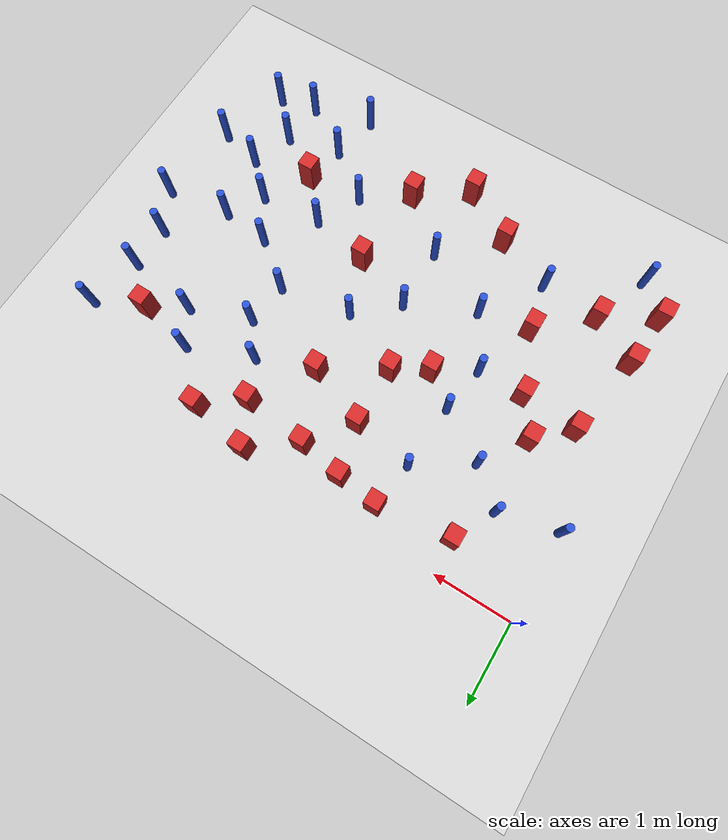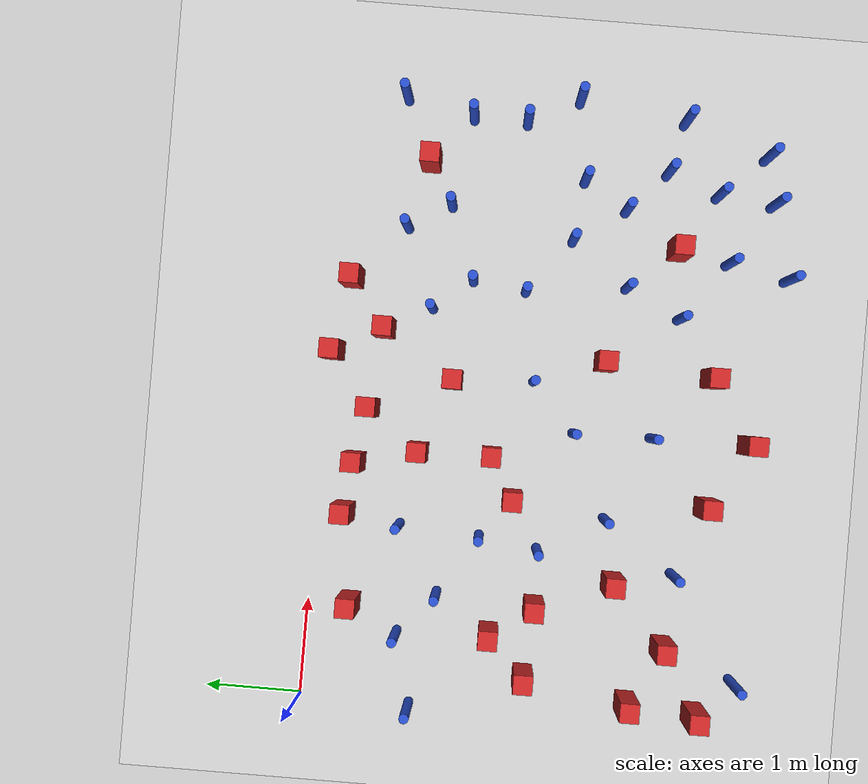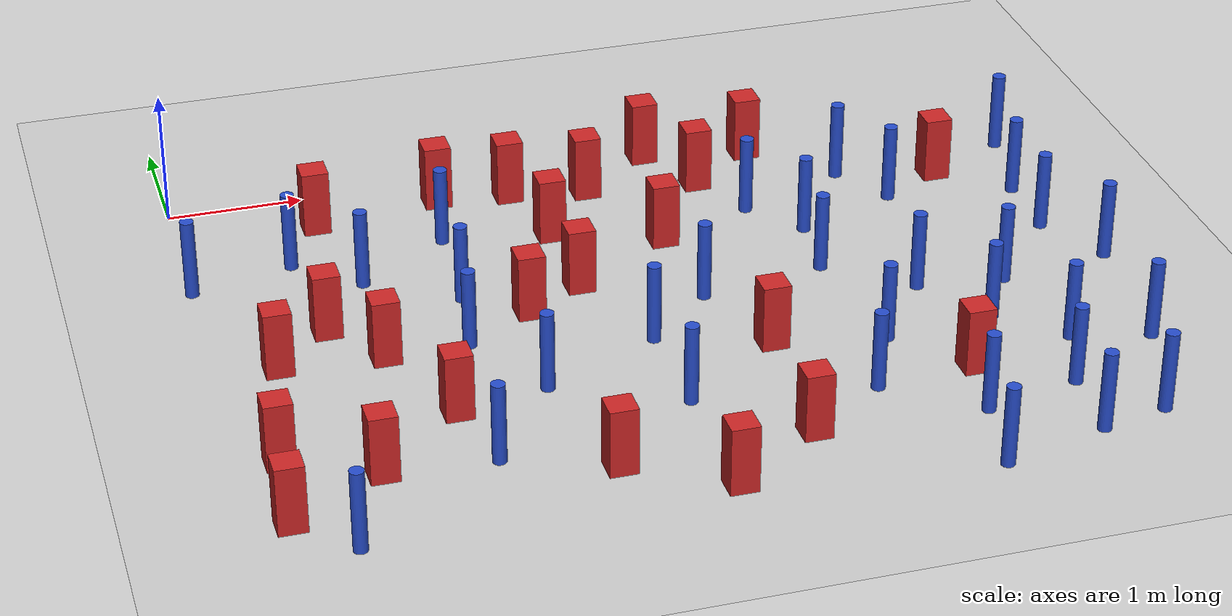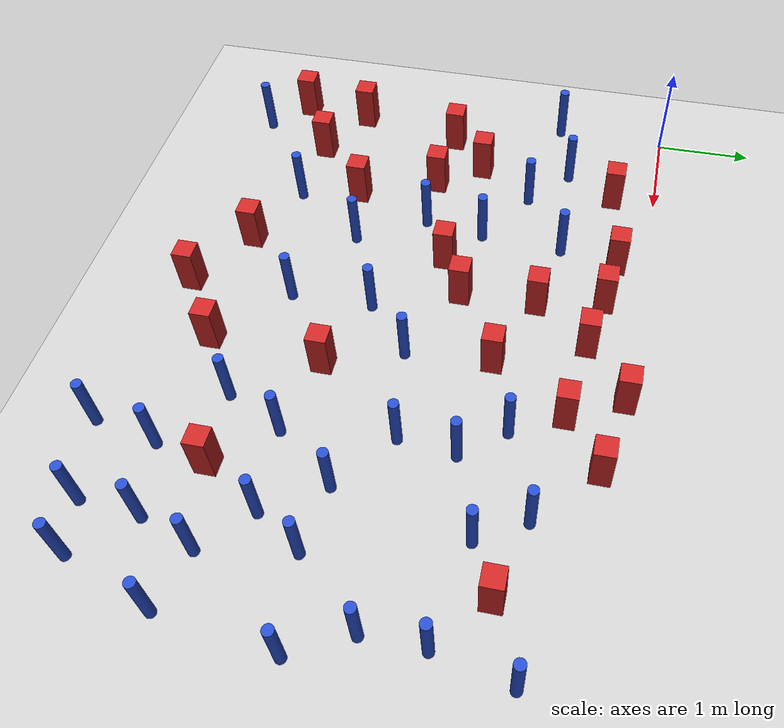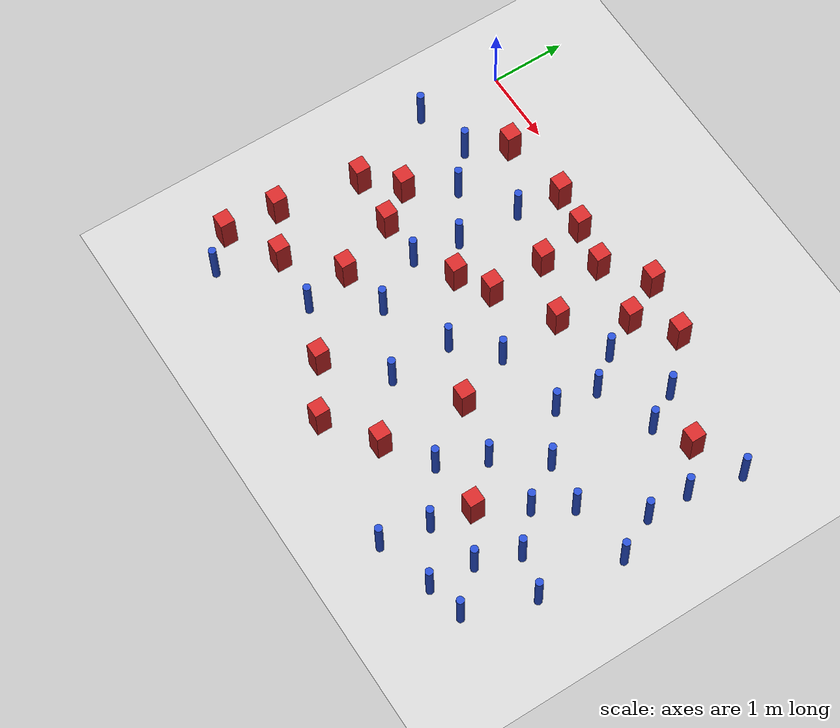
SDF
<sdf version="1.6">
 <world name="default">
  <model name="ground_plane">
   <static>1</static>
   <link name="link">
    <collision name="collision">
     <geometry><plane><normal>0 0 1</normal><size>100 100</size></plane></geometry>
     <surface><friction><ode><mu>100</mu><mu2>50</mu2></ode></friction></surface>
    </collision>
    <visual name="visual">
     <cast_shadows>0</cast_shadows>
     <geometry><plane><normal>0 0 1</normal><size>100 100</size></plane></geometry>
     <material>
      <ambient>1.0 1.0 1.0 1.0</ambient>
      <diffuse>0.8 0.8 0.8 1.0</diffuse>
      <specular>0.01 0.01 0.01 1.000000</specular>
     </material>
    </visual>
   </link>
  </model>
  <model name="pole_obstacle2">
   <static>true</static>
   <pose>4.98972135019 -2.48463313202 7.38925637345e-09 -8.47170692798e-08 1.24976764937e-08 -1.74513093023e-07</pose>
   <link name="link">
    <pose>0 0 0.3 0 -0 0</pose>
    <inertial>
     <mass>1</mass>
     <inertia><ixx>0.145833</ixx><ixy>0</ixy><ixz>0</ixz><iyy>0.145833</iyy><iyz>0</iyz><izz>0.125</izz></inertia>
    </inertial>
    <collision name="collision">
     <geometry><cylinder><radius>0.05</radius><length>.6</length></cylinder></geometry>
    </collision>
    <visual name="visual">
     <geometry><cylinder><radius>0.05</radius><length>.6</length></cylinder></geometry>
     <material>
      <script><name>Gazebo/Blue</name><uri>file://media/materials/scripts/gazebo.material</uri></script>
     </material>
    </visual>
   </link>
  </model>
  <model name="square_post_obstacle9">
   <static>true</static>
   <pose>3.07814021229 -0.493479923198 1.91545236811e-07 -7.35059704564e-06 1.12565212e-07 2.39332434364e-05</pose>
   <link name="link">
    <pose>0 0 0.25 0 -0 0</pose>
    <inertial>
     <mass>100</mass>
     <inertia>
      <ixx>0.166667</ixx>
      <ixy>0</ixy>
      <ixz>0</ixz>
      <iyy>0.166667</iyy>
      <iyz>0</iyz>
      <izz>0.166667</izz>
     </inertia>
    </inertial>
    <collision name="collision"><geometry><box><size>.2 .2 .5</size></box></geometry></collision>
    <visual name="visual">
     <geometry><box><size>.2 .2 .5</size></box></geometry>
     <material>
      <script><name>Gazebo/Red</name><uri>file://media/materials/scripts/gazebo.material</uri></script>
     </material>
    </visual>
   </link>
  </model>
  <model name="pole_obstacle8">
   <static>true</static>
   <pose>4.87359856132 -4.12664584839 7.38925637345e-09 -8.47170692796e-08 1.24976764786e-08 -1.74513093032e-07</pose>
   <link name="link">
    <pose>0 0 0.3 0 -0 0</pose>
    <inertial>
     <mass>1</mass>
     <inertia><ixx>0.145833</ixx><ixy>0</ixy><ixz>0</ixz><iyy>0.145833</iyy><iyz>0</iyz><izz>0.125</izz></inertia>
    </inertial>
    <collision name="collision">
     <geometry><cylinder><radius>0.05</radius><length>.6</length></cylinder></geometry>
    </collision>
    <visual name="visual">
     <geometry><cylinder><radius>0.05</radius><length>.6</length></cylinder></geometry>
     <material>
      <script><name>Gazebo/Blue</name><uri>file://media/materials/scripts/gazebo.material</uri></script>
     </material>
    </visual>
   </link>
  </model>
  <model name="square_post_obstacle15">
   <static>true</static>
   <pose>1.44649515637 -3.17782673812 1.91545236811e-07 -7.35059704564e-06 1.12565212e-07 2.39332434364e-05</pose>
   <link name="link">
    <pose>0 0 0.25 0 -0 0</pose>
    <inertial>
     <mass>100</mass>
     <inertia>
      <ixx>0.166667</ixx>
      <ixy>0</ixy>
      <ixz>0</ixz>
      <iyy>0.166667</iyy>
      <iyz>0</iyz>
      <izz>0.166667</izz>
     </inertia>
    </inertial>
    <collision name="collision"><geometry><box><size>.2 .2 .5</size></box></geometry></collision>
    <visual name="visual">
     <geometry><box><size>.2 .2 .5</size></box></geometry>
     <material>
      <script><name>Gazebo/Red</name><uri>file://media/materials/scripts/gazebo.material</uri></script>
     </material>
    </visual>
   </link>
  </model>
  <model name="pole_obstacle12">
   <static>true</static>
   <pose>5.34514261602 -3.01853340527 7.38925637345e-09 -8.47170692798e-08 1.24976764937e-08 -1.74513093023e-07</pose>
   <link name="link">
    <pose>0 0 0.3 0 -0 0</pose>
    <inertial>
     <mass>1</mass>
     <inertia><ixx>0.145833</ixx><ixy>0</ixy><ixz>0</ixz><iyy>0.145833</iyy><iyz>0</iyz><izz>0.125</izz></inertia>
    </inertial>
    <collision name="collision">
     <geometry><cylinder><radius>0.05</radius><length>.6</length></cylinder></geometry>
    </collision>
    <visual name="visual">
     <geometry><cylinder><radius>0.05</radius><length>.6</length></cylinder></geometry>
     <material>
      <script><name>Gazebo/Blue</name><uri>file://media/materials/scripts/gazebo.material</uri></script>
     </material>
    </visual>
   </link>
  </model>
  <model name="pole_obstacle15">
   <static>true</static>
   <pose>6.19638052908 -1.3493396878 7.38925637345e-09 -8.471706928e-08 1.24976765134e-08 -1.74513093015e-07</pose>
   <link name="link">
    <pose>0 0 0.3 0 -0 0</pose>
    <inertial>
     <mass>1</mass>
     <inertia><ixx>0.145833</ixx><ixy>0</ixy><ixz>0</ixz><iyy>0.145833</iyy><iyz>0</iyz><izz>0.125</izz></inertia>
    </inertial>
    <collision name="collision">
     <geometry><cylinder><radius>0.05</radius><length>.6</length></cylinder></geometry>
    </collision>
    <visual name="visual">
     <geometry><cylinder><radius>0.05</radius><length>.6</length></cylinder></geometry>
     <material>
      <script><name>Gazebo/Blue</name><uri>file://media/materials/scripts/gazebo.material</uri></script>
     </material>
    </visual>
   </link>
  </model>
  <model name="square_post_obstacle28">
   <static>true</static>
   <pose>2.31341641159 -4.09637459964 1.91545236811e-07 -7.35059704564e-06 1.12565212e-07 2.39332434364e-05</pose>
   <link name="link">
    <pose>0 0 0.25 0 -0 0</pose>
    <inertial>
     <mass>100</mass>
     <inertia>
      <ixx>0.166667</ixx>
      <ixy>0</ixy>
      <ixz>0</ixz>
      <iyy>0.166667</iyy>
      <iyz>0</iyz>
      <izz>0.166667</izz>
     </inertia>
    </inertial>
    <collision name="collision"><geometry><box><size>.2 .2 .5</size></box></geometry></collision>
    <visual name="visual">
     <geometry><box><size>.2 .2 .5</size></box></geometry>
     <material>
      <script><name>Gazebo/Red</name><uri>file://media/materials/scripts/gazebo.material</uri></script>
     </material>
    </visual>
   </link>
  </model>
  <model name="square_post_obstacle40">
   <static>true</static>
   <pose>3.6616009602 -4.05863573165 1.91545236811e-07 -7.35059704564e-06 1.12565212e-07 2.39332434364e-05</pose>
   <link name="link">
    <pose>0 0 0.25 0 -0 0</pose>
    <inertial>
     <mass>100</mass>
     <inertia>
      <ixx>0.166667</ixx>
      <ixy>0</ixy>
      <ixz>0</ixz>
      <iyy>0.166667</iyy>
      <iyz>0</iyz>
      <izz>0.166667</izz>
     </inertia>
    </inertial>
    <collision name="collision"><geometry><box><size>.2 .2 .5</size></box></geometry></collision>
    <visual name="visual">
     <geometry><box><size>.2 .2 .5</size></box></geometry>
     <material>
      <script><name>Gazebo/Red</name><uri>file://media/materials/scripts/gazebo.material</uri></script>
     </material>
    </visual>
   </link>
  </model>
  <model name="square_post_obstacle46">
   <static>true</static>
   <pose>3.91481133137 -0.595777153632 1.91545236811e-07 -7.35059704564e-06 1.12565212e-07 2.39332434364e-05</pose>
   <link name="link">
    <pose>0 0 0.25 0 -0 0</pose>
    <inertial>
     <mass>100</mass>
     <inertia>
      <ixx>0.166667</ixx>
      <ixy>0</ixy>
      <ixz>0</ixz>
      <iyy>0.166667</iyy>
      <iyz>0</iyz>
      <izz>0.166667</izz>
     </inertia>
    </inertial>
    <collision name="collision"><geometry><box><size>.2 .2 .5</size></box></geometry></collision>
    <visual name="visual">
     <geometry><box><size>.2 .2 .5</size></box></geometry>
     <material>
      <script><name>Gazebo/Red</name><uri>file://media/materials/scripts/gazebo.material</uri></script>
     </material>
    </visual>
   </link>
  </model>
  <model name="pole_obstacle48">
   <static>true</static>
   <pose>1.82363828428 -1.74900456657 7.38925637345e-09 -8.471706928e-08 1.24976765079e-08 -1.74513093017e-07</pose>
   <link name="link">
    <pose>0 0 0.3 0 -0 0</pose>
    <inertial>
     <mass>1</mass>
     <inertia><ixx>0.145833</ixx><ixy>0</ixy><ixz>0</ixz><iyy>0.145833</iyy><iyz>0</iyz><izz>0.125</izz></inertia>
    </inertial>
    <collision name="collision">
     <geometry><cylinder><radius>0.05</radius><length>.6</length></cylinder></geometry>
    </collision>
    <visual name="visual">
     <geometry><cylinder><radius>0.05</radius><length>.6</length></cylinder></geometry>
     <material>
      <script><name>Gazebo/Blue</name><uri>file://media/materials/scripts/gazebo.material</uri></script>
     </material>
    </visual>
   </link>
  </model>
  <model name="pole_obstacle51">
   <static>true</static>
   <pose>1.87616246916 -0.905502290944 7.38925637345e-09 -8.47170692799e-08 1.24976765075e-08 -1.74513093017e-07</pose>
   <link name="link">
    <pose>0 0 0.3 0 -0 0</pose>
    <inertial>
     <mass>1</mass>
     <inertia><ixx>0.145833</ixx><ixy>0</ixy><ixz>0</ixz><iyy>0.145833</iyy><iyz>0</iyz><izz>0.125</izz></inertia>
    </inertial>
    <collision name="collision">
     <geometry><cylinder><radius>0.05</radius><length>.6</length></cylinder></geometry>
    </collision>
    <visual name="visual">
     <geometry><cylinder><radius>0.05</radius><length>.6</length></cylinder></geometry>
     <material>
      <script><name>Gazebo/Blue</name><uri>file://media/materials/scripts/gazebo.material</uri></script>
     </material>
    </visual>
   </link>
  </model>
  <model name="pole_obstacle52">
   <static>true</static>
   <pose>4.2577325476 -3.66100865085 7.38925637345e-09 -8.47170692798e-08 1.24976764937e-08 -1.74513093023e-07</pose>
   <link name="link">
    <pose>0 0 0.3 0 -0 0</pose>
    <inertial>
     <mass>1</mass>
     <inertia><ixx>0.145833</ixx><ixy>0</ixy><ixz>0</ixz><iyy>0.145833</iyy><iyz>0</iyz><izz>0.125</izz></inertia>
    </inertial>
    <collision name="collision">
     <geometry><cylinder><radius>0.05</radius><length>.6</length></cylinder></geometry>
    </collision>
    <visual name="visual">
     <geometry><cylinder><radius>0.05</radius><length>.6</length></cylinder></geometry>
     <material>
      <script><name>Gazebo/Blue</name><uri>file://media/materials/scripts/gazebo.material</uri></script>
     </material>
    </visual>
   </link>
  </model>
  <model name="pole_obstacle53">
   <static>true</static>
   <pose>5.76941700825 -3.42225584379 7.38925637345e-09 -8.47170692798e-08 1.24976764937e-08 -1.74513093023e-07</pose>
   <link name="link">
    <pose>0 0 0.3 0 -0 0</pose>
    <inertial>
     <mass>1</mass>
     <inertia><ixx>0.145833</ixx><ixy>0</ixy><ixz>0</ixz><iyy>0.145833</iyy><iyz>0</iyz><izz>0.125</izz></inertia>
    </inertial>
    <collision name="collision">
     <geometry><cylinder><radius>0.05</radius><length>.6</length></cylinder></geometry>
    </collision>
    <visual name="visual">
     <geometry><cylinder><radius>0.05</radius><length>.6</length></cylinder></geometry>
     <material>
      <script><name>Gazebo/Blue</name><uri>file://media/materials/scripts/gazebo.material</uri></script>
     </material>
    </visual>
   </link>
  </model>
  <model name="pole_obstacle56">
   <static>true</static>
   <pose>3.48493587139 -2.1916144072 7.38925637345e-09 -8.47170692798e-08 1.24976764939e-08 -1.74513093025e-07</pose>
   <link name="link">
    <pose>0 0 0.3 0 -0 0</pose>
    <inertial>
     <mass>1</mass>
     <inertia><ixx>0.145833</ixx><ixy>0</ixy><ixz>0</ixz><iyy>0.145833</iyy><iyz>0</iyz><izz>0.125</izz></inertia>
    </inertial>
    <collision name="collision">
     <geometry><cylinder><radius>0.05</radius><length>.6</length></cylinder></geometry>
    </collision>
    <visual name="visual">
     <geometry><cylinder><radius>0.05</radius><length>.6</length></cylinder></geometry>
     <material>
      <script><name>Gazebo/Blue</name><uri>file://media/materials/scripts/gazebo.material</uri></script>
     </material>
    </visual>
   </link>
  </model>
  <model name="pole_obstacle61">
   <static>true</static>
   <pose>4.99258615142 -0.750755131839 7.38925637345e-09 -8.47170692799e-08 1.24976765038e-08 -1.74513093018e-07</pose>
   <link name="link">
    <pose>0 0 0.3 0 -0 0</pose>
    <inertial>
     <mass>1</mass>
     <inertia><ixx>0.145833</ixx><ixy>0</ixy><ixz>0</ixz><iyy>0.145833</iyy><iyz>0</iyz><izz>0.125</izz></inertia>
    </inertial>
    <collision name="collision">
     <geometry><cylinder><radius>0.05</radius><length>.6</length></cylinder></geometry>
    </collision>
    <visual name="visual">
     <geometry><cylinder><radius>0.05</radius><length>.6</length></cylinder></geometry>
     <material>
      <script><name>Gazebo/Blue</name><uri>file://media/materials/scripts/gazebo.material</uri></script>
     </material>
    </visual>
   </link>
  </model>
  <model name="pole_obstacle74">
   <static>true</static>
   <pose>4.16450571436 -1.07371164675 7.38925637345e-09 -8.471706928e-08 1.24976765134e-08 -1.74513093015e-07</pose>
   <link name="link">
    <pose>0 0 0.3 0 -0 0</pose>
    <inertial>
     <mass>1</mass>
     <inertia><ixx>0.145833</ixx><ixy>0</ixy><ixz>0</ixz><iyy>0.145833</iyy><iyz>0</iyz><izz>0.125</izz></inertia>
    </inertial>
    <collision name="collision">
     <geometry><cylinder><radius>0.05</radius><length>.6</length></cylinder></geometry>
    </collision>
    <visual name="visual">
     <geometry><cylinder><radius>0.05</radius><length>.6</length></cylinder></geometry>
     <material>
      <script><name>Gazebo/Blue</name><uri>file://media/materials/scripts/gazebo.material</uri></script>
     </material>
    </visual>
   </link>
  </model>
  <model name="pole_obstacle85">
   <static>true</static>
   <pose>5.57365459391 -3.96516409091 7.38925637345e-09 -8.47170692799e-08 1.24976764984e-08 -1.7451309302e-07</pose>
   <link name="link">
    <pose>0 0 0.3 0 -0 0</pose>
    <inertial>
     <mass>1</mass>
     <inertia><ixx>0.145833</ixx><ixy>0</ixy><ixz>0</ixz><iyy>0.145833</iyy><iyz>0</iyz><izz>0.125</izz></inertia>
    </inertial>
    <collision name="collision">
     <geometry><cylinder><radius>0.05</radius><length>.6</length></cylinder></geometry>
    </collision>
    <visual name="visual">
     <geometry><cylinder><radius>0.05</radius><length>.6</length></cylinder></geometry>
     <material>
      <script><name>Gazebo/Blue</name><uri>file://media/materials/scripts/gazebo.material</uri></script>
     </material>
    </visual>
   </link>
  </model>
  <model name="square_post_obstacle80">
   <static>true</static>
   <pose>3.43149985435 -1.34768225889 1.91545236811e-07 -7.35059704564e-06 1.12565212e-07 2.39332434364e-05</pose>
   <link name="link">
    <pose>0 0 0.25 0 -0 0</pose>
    <inertial>
     <mass>100</mass>
     <inertia>
      <ixx>0.166667</ixx>
      <ixy>0</ixy>
      <ixz>0</ixz>
      <iyy>0.166667</iyy>
      <iyz>0</iyz>
      <izz>0.166667</izz>
     </inertia>
    </inertial>
    <collision name="collision"><geometry><box><size>.2 .2 .5</size></box></geometry></collision>
    <visual name="visual">
     <geometry><box><size>.2 .2 .5</size></box></geometry>
     <material>
      <script><name>Gazebo/Red</name><uri>file://media/materials/scripts/gazebo.material</uri></script>
     </material>
    </visual>
   </link>
  </model>
  <model name="pole_obstacle88">
   <static>true</static>
   <pose>4.41776695109 -2.03692035002 7.38925637345e-09 -8.471706928e-08 1.2497676506e-08 -1.74513093017e-07</pose>
   <link name="link">
    <pose>0 0 0.3 0 -0 0</pose>
    <inertial>
     <mass>1</mass>
     <inertia><ixx>0.145833</ixx><ixy>0</ixy><ixz>0</ixz><iyy>0.145833</iyy><iyz>0</iyz><izz>0.125</izz></inertia>
    </inertial>
    <collision name="collision">
     <geometry><cylinder><radius>0.05</radius><length>.6</length></cylinder></geometry>
    </collision>
    <visual name="visual">
     <geometry><cylinder><radius>0.05</radius><length>.6</length></cylinder></geometry>
     <material>
      <script><name>Gazebo/Blue</name><uri>file://media/materials/scripts/gazebo.material</uri></script>
     </material>
    </visual>
   </link>
  </model>
  <model name="square_post_obstacle86">
   <static>true</static>
   <pose>2.50342741893 -0.389893578889 1.91545236811e-07 -7.35059704564e-06 1.12565212e-07 2.39332434364e-05</pose>
   <link name="link">
    <pose>0 0 0.25 0 -0 0</pose>
    <inertial>
     <mass>100</mass>
     <inertia>
      <ixx>0.166667</ixx>
      <ixy>0</ixy>
      <ixz>0</ixz>
      <iyy>0.166667</iyy>
      <iyz>0</iyz>
      <izz>0.166667</izz>
     </inertia>
    </inertial>
    <collision name="collision"><geometry><box><size>.2 .2 .5</size></box></geometry></collision>
    <visual name="visual">
     <geometry><box><size>.2 .2 .5</size></box></geometry>
     <material>
      <script><name>Gazebo/Red</name><uri>file://media/materials/scripts/gazebo.material</uri></script>
     </material>
    </visual>
   </link>
  </model>
  <model name="pole_obstacle107">
   <static>true</static>
   <pose>1.5799974567 -3.80295663081 7.38925637345e-09 -8.47170692799e-08 1.24976765053e-08 -1.74513093017e-07</pose>
   <link name="link">
    <pose>0 0 0.3 0 -0 0</pose>
    <inertial>
     <mass>1</mass>
     <inertia><ixx>0.145833</ixx><ixy>0</ixy><ixz>0</ixz><iyy>0.145833</iyy><iyz>0</iyz><izz>0.125</izz></inertia>
    </inertial>
    <collision name="collision">
     <geometry><cylinder><radius>0.05</radius><length>.6</length></cylinder></geometry>
    </collision>
    <visual name="visual">
     <geometry><cylinder><radius>0.05</radius><length>.6</length></cylinder></geometry>
     <material>
      <script><name>Gazebo/Blue</name><uri>file://media/materials/scripts/gazebo.material</uri></script>
     </material>
    </visual>
   </link>
  </model>
  <model name="pole_obstacle113">
   <static>true</static>
   <pose>5.5223241672 -4.55224135968 7.38925637345e-09 -8.47170692796e-08 1.24976764786e-08 -1.74513093032e-07</pose>
   <link name="link">
    <pose>0 0 0.3 0 -0 0</pose>
    <inertial>
     <mass>1</mass>
     <inertia><ixx>0.145833</ixx><ixy>0</ixy><ixz>0</ixz><iyy>0.145833</iyy><iyz>0</iyz><izz>0.125</izz></inertia>
    </inertial>
    <collision name="collision">
     <geometry><cylinder><radius>0.05</radius><length>.6</length></cylinder></geometry>
    </collision>
    <visual name="visual">
     <geometry><cylinder><radius>0.05</radius><length>.6</length></cylinder></geometry>
     <material>
      <script><name>Gazebo/Blue</name><uri>file://media/materials/scripts/gazebo.material</uri></script>
     </material>
    </visual>
   </link>
  </model>
  <model name="pole_obstacle114">
   <static>true</static>
   <pose>5.25472346224 -1.19340477333 7.38925637345e-09 -8.471706928e-08 1.24976765134e-08 -1.74513093015e-07</pose>
   <link name="link">
    <pose>0 0 0.3 0 -0 0</pose>
    <inertial>
     <mass>1</mass>
     <inertia><ixx>0.145833</ixx><ixy>0</ixy><ixz>0</ixz><iyy>0.145833</iyy><iyz>0</iyz><izz>0.125</izz></inertia>
    </inertial>
    <collision name="collision">
     <geometry><cylinder><radius>0.05</radius><length>.6</length></cylinder></geometry>
    </collision>
    <visual name="visual">
     <geometry><cylinder><radius>0.05</radius><length>.6</length></cylinder></geometry>
     <material>
      <script><name>Gazebo/Blue</name><uri>file://media/materials/scripts/gazebo.material</uri></script>
     </material>
    </visual>
   </link>
  </model>
  <model name="square_post_obstacle106">
   <static>true</static>
   <pose>5.70944358557 -0.939359294038 1.91545236811e-07 -7.35059704564e-06 1.12565212e-07 2.39332434364e-05</pose>
   <link name="link">
    <pose>0 0 0.25 0 -0 0</pose>
    <inertial>
     <mass>100</mass>
     <inertia>
      <ixx>0.166667</ixx>
      <ixy>0</ixy>
      <ixz>0</ixz>
      <iyy>0.166667</iyy>
      <iyz>0</iyz>
      <izz>0.166667</izz>
     </inertia>
    </inertial>
    <collision name="collision"><geometry><box><size>.2 .2 .5</size></box></geometry></collision>
    <visual name="visual">
     <geometry><box><size>.2 .2 .5</size></box></geometry>
     <material>
      <script><name>Gazebo/Red</name><uri>file://media/materials/scripts/gazebo.material</uri></script>
     </material>
    </visual>
   </link>
  </model>
  <model name="square_post_obstacle107">
   <static>true</static>
   <pose>2.66814691827 -1.81201320713 1.91545236811e-07 -7.35059704564e-06 1.12565212e-07 2.39332434364e-05</pose>
   <link name="link">
    <pose>0 0 0.25 0 -0 0</pose>
    <inertial>
     <mass>100</mass>
     <inertia>
      <ixx>0.166667</ixx>
      <ixy>0</ixy>
      <ixz>0</ixz>
      <iyy>0.166667</iyy>
      <iyz>0</iyz>
      <izz>0.166667</izz>
     </inertia>
    </inertial>
    <collision name="collision"><geometry><box><size>.2 .2 .5</size></box></geometry></collision>
    <visual name="visual">
     <geometry><box><size>.2 .2 .5</size></box></geometry>
     <material>
      <script><name>Gazebo/Red</name><uri>file://media/materials/scripts/gazebo.material</uri></script>
     </material>
    </visual>
   </link>
  </model>
  <model name="pole_obstacle126">
   <static>true</static>
   <pose>4.4852120022 -1.47841758249 7.38925637345e-09 -8.471706928e-08 1.24976765134e-08 -1.74513093015e-07</pose>
   <link name="link">
    <pose>0 0 0.3 0 -0 0</pose>
    <inertial>
     <mass>1</mass>
     <inertia><ixx>0.145833</ixx><ixy>0</ixy><ixz>0</ixz><iyy>0.145833</iyy><iyz>0</iyz><izz>0.125</izz></inertia>
    </inertial>
    <collision name="collision">
     <geometry><cylinder><radius>0.05</radius><length>.6</length></cylinder></geometry>
    </collision>
    <visual name="visual">
     <geometry><cylinder><radius>0.05</radius><length>.6</length></cylinder></geometry>
     <material>
      <script><name>Gazebo/Blue</name><uri>file://media/materials/scripts/gazebo.material</uri></script>
     </material>
    </visual>
   </link>
  </model>
  <model name="square_post_obstacle114">
   <static>true</static>
   <pose>0.136373822371 -4.13757862447 1.91545236811e-07 -7.35059704564e-06 1.12565212e-07 2.39332434364e-05</pose>
   <link name="link">
    <pose>0 0 0.25 0 -0 0</pose>
    <inertial>
     <mass>100</mass>
     <inertia>
      <ixx>0.166667</ixx>
      <ixy>0</ixy>
      <ixz>0</ixz>
      <iyy>0.166667</iyy>
      <iyz>0</iyz>
      <izz>0.166667</izz>
     </inertia>
    </inertial>
    <collision name="collision"><geometry><box><size>.2 .2 .5</size></box></geometry></collision>
    <visual name="visual">
     <geometry><box><size>.2 .2 .5</size></box></geometry>
     <material>
      <script><name>Gazebo/Red</name><uri>file://media/materials/scripts/gazebo.material</uri></script>
     </material>
    </visual>
   </link>
  </model>
  <model name="pole_obstacle137">
   <static>true</static>
   <pose>0.7416067111 -0.963800972033 7.38925637345e-09 -8.47170692799e-08 1.24976765014e-08 -1.7451309302e-07</pose>
   <link name="link">
    <pose>0 0 0.3 0 -0 0</pose>
    <inertial>
     <mass>1</mass>
     <inertia><ixx>0.145833</ixx><ixy>0</ixy><ixz>0</ixz><iyy>0.145833</iyy><iyz>0</iyz><izz>0.125</izz></inertia>
    </inertial>
    <collision name="collision">
     <geometry><cylinder><radius>0.05</radius><length>.6</length></cylinder></geometry>
    </collision>
    <visual name="visual">
     <geometry><cylinder><radius>0.05</radius><length>.6</length></cylinder></geometry>
     <material>
      <script><name>Gazebo/Blue</name><uri>file://media/materials/scripts/gazebo.material</uri></script>
     </material>
    </visual>
   </link>
  </model>
  <model name="pole_obstacle140">
   <static>true</static>
   <pose>4.74934820061 -4.75603895316 7.38925637345e-09 -8.47170692796e-08 1.24976764786e-08 -1.74513093032e-07</pose>
   <link name="link">
    <pose>0 0 0.3 0 -0 0</pose>
    <inertial>
     <mass>1</mass>
     <inertia><ixx>0.145833</ixx><ixy>0</ixy><ixz>0</ixz><iyy>0.145833</iyy><iyz>0</iyz><izz>0.125</izz></inertia>
    </inertial>
    <collision name="collision">
     <geometry><cylinder><radius>0.05</radius><length>.6</length></cylinder></geometry>
    </collision>
    <visual name="visual">
     <geometry><cylinder><radius>0.05</radius><length>.6</length></cylinder></geometry>
     <material>
      <script><name>Gazebo/Blue</name><uri>file://media/materials/scripts/gazebo.material</uri></script>
     </material>
    </visual>
   </link>
  </model>
  <model name="square_post_obstacle131">
   <static>true</static>
   <pose>3.74814416444 -2.91928226518 1.91545236811e-07 -7.35059704564e-06 1.12565212e-07 2.39332434364e-05</pose>
   <link name="link">
    <pose>0 0 0.25 0 -0 0</pose>
    <inertial>
     <mass>100</mass>
     <inertia>
      <ixx>0.166667</ixx>
      <ixy>0</ixy>
      <ixz>0</ixz>
      <iyy>0.166667</iyy>
      <iyz>0</iyz>
      <izz>0.166667</izz>
     </inertia>
    </inertial>
    <collision name="collision"><geometry><box><size>.2 .2 .5</size></box></geometry></collision>
    <visual name="visual">
     <geometry><box><size>.2 .2 .5</size></box></geometry>
     <material>
      <script><name>Gazebo/Red</name><uri>file://media/materials/scripts/gazebo.material</uri></script>
     </material>
    </visual>
   </link>
  </model>
  <model name="pole_obstacle146">
   <static>true</static>
   <pose>2.99019535703 -3.47109933406 7.38925637345e-09 -8.47170692798e-08 1.24976764939e-08 -1.74513093025e-07</pose>
   <link name="link">
    <pose>0 0 0.3 0 -0 0</pose>
    <inertial>
     <mass>1</mass>
     <inertia><ixx>0.145833</ixx><ixy>0</ixy><ixz>0</ixz><iyy>0.145833</iyy><iyz>0</iyz><izz>0.125</izz></inertia>
    </inertial>
    <collision name="collision">
     <geometry><cylinder><radius>0.05</radius><length>.6</length></cylinder></geometry>
    </collision>
    <visual name="visual">
     <geometry><cylinder><radius>0.05</radius><length>.6</length></cylinder></geometry>
     <material>
      <script><name>Gazebo/Blue</name><uri>file://media/materials/scripts/gazebo.material</uri></script>
     </material>
    </visual>
   </link>
  </model>
  <model name="pole_obstacle156">
   <static>true</static>
   <pose>4.53890651596 -3.08607616318 7.38925637345e-09 -8.47170692798e-08 1.24976764937e-08 -1.74513093023e-07</pose>
   <link name="link">
    <pose>0 0 0.3 0 -0 0</pose>
    <inertial>
     <mass>1</mass>
     <inertia><ixx>0.145833</ixx><ixy>0</ixy><ixz>0</ixz><iyy>0.145833</iyy><iyz>0</iyz><izz>0.125</izz></inertia>
    </inertial>
    <collision name="collision">
     <geometry><cylinder><radius>0.05</radius><length>.6</length></cylinder></geometry>
    </collision>
    <visual name="visual">
     <geometry><cylinder><radius>0.05</radius><length>.6</length></cylinder></geometry>
     <material>
      <script><name>Gazebo/Blue</name><uri>file://media/materials/scripts/gazebo.material</uri></script>
     </material>
    </visual>
   </link>
  </model>
  <model name="pole_obstacle159">
   <static>true</static>
   <pose>6.31994936171 -3.5640185029 7.38925637345e-09 -8.47170692798e-08 1.24976764937e-08 -1.74513093023e-07</pose>
   <link name="link">
    <pose>0 0 0.3 0 -0 0</pose>
    <inertial>
     <mass>1</mass>
     <inertia><ixx>0.145833</ixx><ixy>0</ixy><ixz>0</ixz><iyy>0.145833</iyy><iyz>0</iyz><izz>0.125</izz></inertia>
    </inertial>
    <collision name="collision">
     <geometry><cylinder><radius>0.05</radius><length>.6</length></cylinder></geometry>
    </collision>
    <visual name="visual">
     <geometry><cylinder><radius>0.05</radius><length>.6</length></cylinder></geometry>
     <material>
      <script><name>Gazebo/Blue</name><uri>file://media/materials/scripts/gazebo.material</uri></script>
     </material>
    </visual>
   </link>
  </model>
  <model name="pole_obstacle162">
   <static>true</static>
   <pose>5.62460637313 -2.56305321455 7.38925637345e-09 -8.47170692798e-08 1.24976764937e-08 -1.74513093023e-07</pose>
   <link name="link">
    <pose>0 0 0.3 0 -0 0</pose>
    <inertial>
     <mass>1</mass>
     <inertia><ixx>0.145833</ixx><ixy>0</ixy><ixz>0</ixz><iyy>0.145833</iyy><iyz>0</iyz><izz>0.125</izz></inertia>
    </inertial>
    <collision name="collision">
     <geometry><cylinder><radius>0.05</radius><length>.6</length></cylinder></geometry>
    </collision>
    <visual name="visual">
     <geometry><cylinder><radius>0.05</radius><length>.6</length></cylinder></geometry>
     <material>
      <script><name>Gazebo/Blue</name><uri>file://media/materials/scripts/gazebo.material</uri></script>
     </material>
    </visual>
   </link>
  </model>
  <model name="square_post_obstacle154">
   <static>true</static>
   <pose>2.99799571102 -4.5071311967 1.91545236811e-07 -7.35059704564e-06 1.12565212e-07 2.39332434364e-05</pose>
   <link name="link">
    <pose>0 0 0.25 0 -0 0</pose>
    <inertial>
     <mass>100</mass>
     <inertia>
      <ixx>0.166667</ixx>
      <ixy>0</ixy>
      <ixz>0</ixz>
      <iyy>0.166667</iyy>
      <iyz>0</iyz>
      <izz>0.166667</izz>
     </inertia>
    </inertial>
    <collision name="collision"><geometry><box><size>.2 .2 .5</size></box></geometry></collision>
    <visual name="visual">
     <geometry><box><size>.2 .2 .5</size></box></geometry>
     <material>
      <script><name>Gazebo/Red</name><uri>file://media/materials/scripts/gazebo.material</uri></script>
     </material>
    </visual>
   </link>
  </model>
  <model name="pole_obstacle163">
   <static>true</static>
   <pose>0.507660578908 -4.51206893657 7.38925637345e-09 -8.47170692799e-08 1.24976765073e-08 -1.74513093015e-07</pose>
   <link name="link">
    <pose>0 0 0.3 0 -0 0</pose>
    <inertial>
     <mass>1</mass>
     <inertia><ixx>0.145833</ixx><ixy>0</ixy><ixz>0</ixz><iyy>0.145833</iyy><iyz>0</iyz><izz>0.125</izz></inertia>
    </inertial>
    <collision name="collision">
     <geometry><cylinder><radius>0.05</radius><length>.6</length></cylinder></geometry>
    </collision>
    <visual name="visual">
     <geometry><cylinder><radius>0.05</radius><length>.6</length></cylinder></geometry>
     <material>
      <script><name>Gazebo/Blue</name><uri>file://media/materials/scripts/gazebo.material</uri></script>
     </material>
    </visual>
   </link>
  </model>
  <model name="square_post_obstacle155">
   <static>true</static>
   <pose>2.2347777786 -2.06303816644 1.91545236811e-07 -7.35059704564e-06 1.12565212e-07 2.39332434364e-05</pose>
   <link name="link">
    <pose>0 0 0.25 0 -0 0</pose>
    <inertial>
     <mass>100</mass>
     <inertia>
      <ixx>0.166667</ixx>
      <ixy>0</ixy>
      <ixz>0</ixz>
      <iyy>0.166667</iyy>
      <iyz>0</iyz>
      <izz>0.166667</izz>
     </inertia>
    </inertial>
    <collision name="collision"><geometry><box><size>.2 .2 .5</size></box></geometry></collision>
    <visual name="visual">
     <geometry><box><size>.2 .2 .5</size></box></geometry>
     <material>
      <script><name>Gazebo/Red</name><uri>file://media/materials/scripts/gazebo.material</uri></script>
     </material>
    </visual>
   </link>
  </model>
  <model name="pole_obstacle164">
   <static>true</static>
   <pose>2.97585049013 -2.64877470138 7.38925637345e-09 -8.47170692798e-08 1.24976764939e-08 -1.74513093025e-07</pose>
   <link name="link">
    <pose>0 0 0.3 0 -0 0</pose>
    <inertial>
     <mass>1</mass>
     <inertia><ixx>0.145833</ixx><ixy>0</ixy><ixz>0</ixz><iyy>0.145833</iyy><iyz>0</iyz><izz>0.125</izz></inertia>
    </inertial>
    <collision name="collision">
     <geometry><cylinder><radius>0.05</radius><length>.6</length></cylinder></geometry>
    </collision>
    <visual name="visual">
     <geometry><cylinder><radius>0.05</radius><length>.6</length></cylinder></geometry>
     <material>
      <script><name>Gazebo/Blue</name><uri>file://media/materials/scripts/gazebo.material</uri></script>
     </material>
    </visual>
   </link>
  </model>
  <model name="pole_obstacle168">
   <static>true</static>
   <pose>2.10690674525 -3.04759617157 7.38925637345e-09 -8.47170692798e-08 1.24976764939e-08 -1.74513093025e-07</pose>
   <link name="link">
    <pose>0 0 0.3 0 -0 0</pose>
    <inertial>
     <mass>1</mass>
     <inertia><ixx>0.145833</ixx><ixy>0</ixy><ixz>0</ixz><iyy>0.145833</iyy><iyz>0</iyz><izz>0.125</izz></inertia>
    </inertial>
    <collision name="collision">
     <geometry><cylinder><radius>0.05</radius><length>.6</length></cylinder></geometry>
    </collision>
    <visual name="visual">
     <geometry><cylinder><radius>0.05</radius><length>.6</length></cylinder></geometry>
     <material>
      <script><name>Gazebo/Blue</name><uri>file://media/materials/scripts/gazebo.material</uri></script>
     </material>
    </visual>
   </link>
  </model>
  <model name="square_post_obstacle162">
   <static>true</static>
   <pose>1.13104413808 -2.37479826405 1.91545236811e-07 -7.35059704564e-06 1.12565212e-07 2.39332434364e-05</pose>
   <link name="link">
    <pose>0 0 0.25 0 -0 0</pose>
    <inertial>
     <mass>100</mass>
     <inertia>
      <ixx>0.166667</ixx>
      <ixy>0</ixy>
      <ixz>0</ixz>
      <iyy>0.166667</iyy>
      <iyz>0</iyz>
      <izz>0.166667</izz>
     </inertia>
    </inertial>
    <collision name="collision"><geometry><box><size>.2 .2 .5</size></box></geometry></collision>
    <visual name="visual">
     <geometry><box><size>.2 .2 .5</size></box></geometry>
     <material>
      <script><name>Gazebo/Red</name><uri>file://media/materials/scripts/gazebo.material</uri></script>
     </material>
    </visual>
   </link>
  </model>
  <model name="square_post_obstacle164">
   <static>true</static>
   <pose>4.42096691485 -0.220567401748 1.91545236811e-07 -7.35059704564e-06 1.12565212e-07 2.39332434364e-05</pose>
   <link name="link">
    <pose>0 0 0.25 0 -0 0</pose>
    <inertial>
     <mass>100</mass>
     <inertia>
      <ixx>0.166667</ixx>
      <ixy>0</ixy>
      <ixz>0</ixz>
      <iyy>0.166667</iyy>
      <iyz>0</iyz>
      <izz>0.166667</izz>
     </inertia>
    </inertial>
    <collision name="collision"><geometry><box><size>.2 .2 .5</size></box></geometry></collision>
    <visual name="visual">
     <geometry><box><size>.2 .2 .5</size></box></geometry>
     <material>
      <script><name>Gazebo/Red</name><uri>file://media/materials/scripts/gazebo.material</uri></script>
     </material>
    </visual>
   </link>
  </model>
  <model name="square_post_obstacle166">
   <static>true</static>
   <pose>1.02100460611 -0.452402780209 1.91545236811e-07 -7.35059704564e-06 1.12565212e-07 2.39332434364e-05</pose>
   <link name="link">
    <pose>0 0 0.25 0 -0 0</pose>
    <inertial>
     <mass>100</mass>
     <inertia>
      <ixx>0.166667</ixx>
      <ixy>0</ixy>
      <ixz>0</ixz>
      <iyy>0.166667</iyy>
      <iyz>0</iyz>
      <izz>0.166667</izz>
     </inertia>
    </inertial>
    <collision name="collision"><geometry><box><size>.2 .2 .5</size></box></geometry></collision>
    <visual name="visual">
     <geometry><box><size>.2 .2 .5</size></box></geometry>
     <material>
      <script><name>Gazebo/Red</name><uri>file://media/materials/scripts/gazebo.material</uri></script>
     </material>
    </visual>
   </link>
  </model>
  <model name="square_post_obstacle170">
   <static>true</static>
   <pose>0.396161854688 -2.3184791263 1.91545236811e-07 -7.35059704564e-06 1.12565212e-07 2.39332434364e-05</pose>
   <link name="link">
    <pose>0 0 0.25 0 -0 0</pose>
    <inertial>
     <mass>100</mass>
     <inertia>
      <ixx>0.166667</ixx>
      <ixy>0</ixy>
      <ixz>0</ixz>
      <iyy>0.166667</iyy>
      <iyz>0</iyz>
      <izz>0.166667</izz>
     </inertia>
    </inertial>
    <collision name="collision"><geometry><box><size>.2 .2 .5</size></box></geometry></collision>
    <visual name="visual">
     <geometry><box><size>.2 .2 .5</size></box></geometry>
     <material>
      <script><name>Gazebo/Red</name><uri>file://media/materials/scripts/gazebo.material</uri></script>
     </material>
    </visual>
   </link>
  </model>
  <model name="pole_obstacle182">
   <static>true</static>
   <pose>6.18720259038 -1.91457130856 7.38925637345e-09 -8.471706928e-08 1.24976765134e-08 -1.74513093015e-07</pose>
   <link name="link">
    <pose>0 0 0.3 0 -0 0</pose>
    <inertial>
     <mass>1</mass>
     <inertia><ixx>0.145833</ixx><ixy>0</ixy><ixz>0</ixz><iyy>0.145833</iyy><iyz>0</iyz><izz>0.125</izz></inertia>
    </inertial>
    <collision name="collision">
     <geometry><cylinder><radius>0.05</radius><length>.6</length></cylinder></geometry>
    </collision>
    <visual name="visual">
     <geometry><cylinder><radius>0.05</radius><length>.6</length></cylinder></geometry>
     <material>
      <script><name>Gazebo/Blue</name><uri>file://media/materials/scripts/gazebo.material</uri></script>
     </material>
    </visual>
   </link>
  </model>
  <model name="pole_obstacle183">
   <static>true</static>
   <pose>6.34881195491 -0.64148931268 7.38925637345e-09 -8.47170692799e-08 1.24976765038e-08 -1.74513093018e-07</pose>
   <link name="link">
    <pose>0 0 0.3 0 -0 0</pose>
    <inertial>
     <mass>1</mass>
     <inertia><ixx>0.145833</ixx><ixy>0</ixy><ixz>0</ixz><iyy>0.145833</iyy><iyz>0</iyz><izz>0.125</izz></inertia>
    </inertial>
    <collision name="collision">
     <geometry><cylinder><radius>0.05</radius><length>.6</length></cylinder></geometry>
    </collision>
    <visual name="visual">
     <geometry><cylinder><radius>0.05</radius><length>.6</length></cylinder></geometry>
     <material>
      <script><name>Gazebo/Blue</name><uri>file://media/materials/scripts/gazebo.material</uri></script>
     </material>
    </visual>
   </link>
  </model>
  <model name="square_post_obstacle172">
   <static>true</static>
   <pose>0.197882625179 -3.42013677511 1.91545236811e-07 -7.35059704564e-06 1.12565212e-07 2.39332434364e-05</pose>
   <link name="link">
    <pose>0 0 0.25 0 -0 0</pose>
    <inertial>
     <mass>100</mass>
     <inertia>
      <ixx>0.166667</ixx>
      <ixy>0</ixy>
      <ixz>0</ixz>
      <iyy>0.166667</iyy>
      <iyz>0</iyz>
      <izz>0.166667</izz>
     </inertia>
    </inertial>
    <collision name="collision"><geometry><box><size>.2 .2 .5</size></box></geometry></collision>
    <visual name="visual">
     <geometry><box><size>.2 .2 .5</size></box></geometry>
     <material>
      <script><name>Gazebo/Red</name><uri>file://media/materials/scripts/gazebo.material</uri></script>
     </material>
    </visual>
   </link>
  </model>
  <model name="pole_obstacle184">
   <static>true</static>
   <pose>6.01133383429 -4.44258551671 7.38925637345e-09 -8.47170692796e-08 1.24976764786e-08 -1.74513093032e-07</pose>
   <link name="link">
    <pose>0 0 0.3 0 -0 0</pose>
    <inertial>
     <mass>1</mass>
     <inertia><ixx>0.145833</ixx><ixy>0</ixy><ixz>0</ixz><iyy>0.145833</iyy><iyz>0</iyz><izz>0.125</izz></inertia>
    </inertial>
    <collision name="collision">
     <geometry><cylinder><radius>0.05</radius><length>.6</length></cylinder></geometry>
    </collision>
    <visual name="visual">
     <geometry><cylinder><radius>0.05</radius><length>.6</length></cylinder></geometry>
     <material>
      <script><name>Gazebo/Blue</name><uri>file://media/materials/scripts/gazebo.material</uri></script>
     </material>
    </visual>
   </link>
  </model>
  <model name="pole_obstacle187">
   <static>true</static>
   <pose>-0.00785798756538 -1.14890192886 7.38925637345e-09 -8.47170692798e-08 1.24976765026e-08 -1.7451309302e-07</pose>
   <link name="link">
    <pose>0 0 0.3 0 -0 0</pose>
    <inertial>
     <mass>1</mass>
     <inertia><ixx>0.145833</ixx><ixy>0</ixy><ixz>0</ixz><iyy>0.145833</iyy><iyz>0</iyz><izz>0.125</izz></inertia>
    </inertial>
    <collision name="collision">
     <geometry><cylinder><radius>0.05</radius><length>.6</length></cylinder></geometry>
    </collision>
    <visual name="visual">
     <geometry><cylinder><radius>0.05</radius><length>.6</length></cylinder></geometry>
     <material>
      <script><name>Gazebo/Blue</name><uri>file://media/materials/scripts/gazebo.material</uri></script>
     </material>
    </visual>
   </link>
  </model>
  <model name="square_post_obstacle196">
   <static>true</static>
   <pose>3.64492574496 -0.0768338833891 1.91545236811e-07 -7.35059704564e-06 1.12565212e-07 2.39332434364e-05</pose>
   <link name="link">
    <pose>0 0 0.25 0 -0 0</pose>
    <inertial>
     <mass>100</mass>
     <inertia>
      <ixx>0.166667</ixx>
      <ixy>0</ixy>
      <ixz>0</ixz>
      <iyy>0.166667</iyy>
      <iyz>0</iyz>
      <izz>0.166667</izz>
     </inertia>
    </inertial>
    <collision name="collision"><geometry><box><size>.2 .2 .5</size></box></geometry></collision>
    <visual name="visual">
     <geometry><box><size>.2 .2 .5</size></box></geometry>
     <material>
      <script><name>Gazebo/Red</name><uri>file://media/materials/scripts/gazebo.material</uri></script>
     </material>
    </visual>
   </link>
  </model>
  <model name="square_post_obstacle201">
   <static>true</static>
   <pose>0.810958035451 -1.92517687764 1.91545236811e-07 -7.35059704564e-06 1.12565212e-07 2.39332434364e-05</pose>
   <link name="link">
    <pose>0 0 0.25 0 -0 0</pose>
    <inertial>
     <mass>100</mass>
     <inertia>
      <ixx>0.166667</ixx>
      <ixy>0</ixy>
      <ixz>0</ixz>
      <iyy>0.166667</iyy>
      <iyz>0</iyz>
      <izz>0.166667</izz>
     </inertia>
    </inertial>
    <collision name="collision"><geometry><box><size>.2 .2 .5</size></box></geometry></collision>
    <visual name="visual">
     <geometry><box><size>.2 .2 .5</size></box></geometry>
     <material>
      <script><name>Gazebo/Red</name><uri>file://media/materials/scripts/gazebo.material</uri></script>
     </material>
    </visual>
   </link>
  </model>
  <model name="square_post_obstacle203">
   <static>true</static>
   <pose>1.96948504798 -0.320153745723 1.91545236811e-07 -7.35059704564e-06 1.12565212e-07 2.39332434364e-05</pose>
   <link name="link">
    <pose>0 0 0.25 0 -0 0</pose>
    <inertial>
     <mass>100</mass>
     <inertia>
      <ixx>0.166667</ixx>
      <ixy>0</ixy>
      <ixz>0</ixz>
      <iyy>0.166667</iyy>
      <iyz>0</iyz>
      <izz>0.166667</izz>
     </inertia>
    </inertial>
    <collision name="collision"><geometry><box><size>.2 .2 .5</size></box></geometry></collision>
    <visual name="visual">
     <geometry><box><size>.2 .2 .5</size></box></geometry>
     <material>
      <script><name>Gazebo/Red</name><uri>file://media/materials/scripts/gazebo.material</uri></script>
     </material>
    </visual>
   </link>
  </model>
  <model name="square_post_obstacle205">
   <static>true</static>
   <pose>0.814171639519 -3.75073117708 1.91545236811e-07 -7.35059704564e-06 1.12565212e-07 2.39332434364e-05</pose>
   <link name="link">
    <pose>0 0 0.25 0 -0 0</pose>
    <inertial>
     <mass>100</mass>
     <inertia>
      <ixx>0.166667</ixx>
      <ixy>0</ixy>
      <ixz>0</ixz>
      <iyy>0.166667</iyy>
      <iyz>0</iyz>
      <izz>0.166667</izz>
     </inertia>
    </inertial>
    <collision name="collision"><geometry><box><size>.2 .2 .5</size></box></geometry></collision>
    <visual name="visual">
     <geometry><box><size>.2 .2 .5</size></box></geometry>
     <material>
      <script><name>Gazebo/Red</name><uri>file://media/materials/scripts/gazebo.material</uri></script>
     </material>
    </visual>
   </link>
  </model>
  <model name="pole_obstacle202">
   <static>true</static>
   <pose>1.72982648056 -2.36582751105 7.38925637345e-09 -8.47170692799e-08 1.24976765053e-08 -1.74513093017e-07</pose>
   <link name="link">
    <pose>0 0 0.3 0 -0 0</pose>
    <inertial>
     <mass>1</mass>
     <inertia><ixx>0.145833</ixx><ixy>0</ixy><ixz>0</ixz><iyy>0.145833</iyy><iyz>0</iyz><izz>0.125</izz></inertia>
    </inertial>
    <collision name="collision">
     <geometry><cylinder><radius>0.05</radius><length>.6</length></cylinder></geometry>
    </collision>
    <visual name="visual">
     <geometry><cylinder><radius>0.05</radius><length>.6</length></cylinder></geometry>
     <material>
      <script><name>Gazebo/Blue</name><uri>file://media/materials/scripts/gazebo.material</uri></script>
     </material>
    </visual>
   </link>
  </model>
  <model name="pole_obstacle205">
   <static>true</static>
   <pose>1.19046114348 -1.35120195906 7.38925637345e-09 -8.471706928e-08 1.24976765079e-08 -1.74513093017e-07</pose>
   <link name="link">
    <pose>0 0 0.3 0 -0 0</pose>
    <inertial>
     <mass>1</mass>
     <inertia><ixx>0.145833</ixx><ixy>0</ixy><ixz>0</ixz><iyy>0.145833</iyy><iyz>0</iyz><izz>0.125</izz></inertia>
    </inertial>
    <collision name="collision">
     <geometry><cylinder><radius>0.05</radius><length>.6</length></cylinder></geometry>
    </collision>
    <visual name="visual">
     <geometry><cylinder><radius>0.05</radius><length>.6</length></cylinder></geometry>
     <material>
      <script><name>Gazebo/Blue</name><uri>file://media/materials/scripts/gazebo.material</uri></script>
     </material>
    </visual>
   </link>
  </model>
  <model name="pole_obstacle211">
   <static>true</static>
   <pose>6.46061634805 -2.4471737753 7.38925637345e-09 -8.47170692798e-08 1.24976764937e-08 -1.74513093023e-07</pose>
   <link name="link">
    <pose>0 0 0.3 0 -0 0</pose>
    <inertial>
     <mass>1</mass>
     <inertia><ixx>0.145833</ixx><ixy>0</ixy><ixz>0</ixz><iyy>0.145833</iyy><iyz>0</iyz><izz>0.125</izz></inertia>
    </inertial>
    <collision name="collision">
     <geometry><cylinder><radius>0.05</radius><length>.6</length></cylinder></geometry>
    </collision>
    <visual name="visual">
     <geometry><cylinder><radius>0.05</radius><length>.6</length></cylinder></geometry>
     <material>
      <script><name>Gazebo/Blue</name><uri>file://media/materials/scripts/gazebo.material</uri></script>
     </material>
    </visual>
   </link>
  </model>
  <model name="square_post_obstacle218">
   <static>true</static>
   <pose>4.98039621091 -3.59637511159 1.91545236811e-07 -7.35059704564e-06 1.12565212e-07 2.39332434364e-05</pose>
   <link name="link">
    <pose>0 0 0.25 0 -0 0</pose>
    <inertial>
     <mass>100</mass>
     <inertia>
      <ixx>0.166667</ixx>
      <ixy>0</ixy>
      <ixz>0</ixz>
      <iyy>0.166667</iyy>
      <iyz>0</iyz>
      <izz>0.166667</izz>
     </inertia>
    </inertial>
    <collision name="collision"><geometry><box><size>.2 .2 .5</size></box></geometry></collision>
    <visual name="visual">
     <geometry><box><size>.2 .2 .5</size></box></geometry>
     <material>
      <script><name>Gazebo/Red</name><uri>file://media/materials/scripts/gazebo.material</uri></script>
     </material>
    </visual>
   </link>
  </model>
  <model name="square_post_obstacle230">
   <static>true</static>
   <pose>2.6569499648 -1.04524001192 1.91545236811e-07 -7.35059704564e-06 1.12565212e-07 2.39332434364e-05</pose>
   <link name="link">
    <pose>0 0 0.25 0 -0 0</pose>
    <inertial>
     <mass>100</mass>
     <inertia>
      <ixx>0.166667</ixx>
      <ixy>0</ixy>
      <ixz>0</ixz>
      <iyy>0.166667</iyy>
      <iyz>0</iyz>
      <izz>0.166667</izz>
     </inertia>
    </inertial>
    <collision name="collision"><geometry><box><size>.2 .2 .5</size></box></geometry></collision>
    <visual name="visual">
     <geometry><box><size>.2 .2 .5</size></box></geometry>
     <material>
      <script><name>Gazebo/Red</name><uri>file://media/materials/scripts/gazebo.material</uri></script>
     </material>
    </visual>
   </link>
  </model>
 </world>
</sdf>
